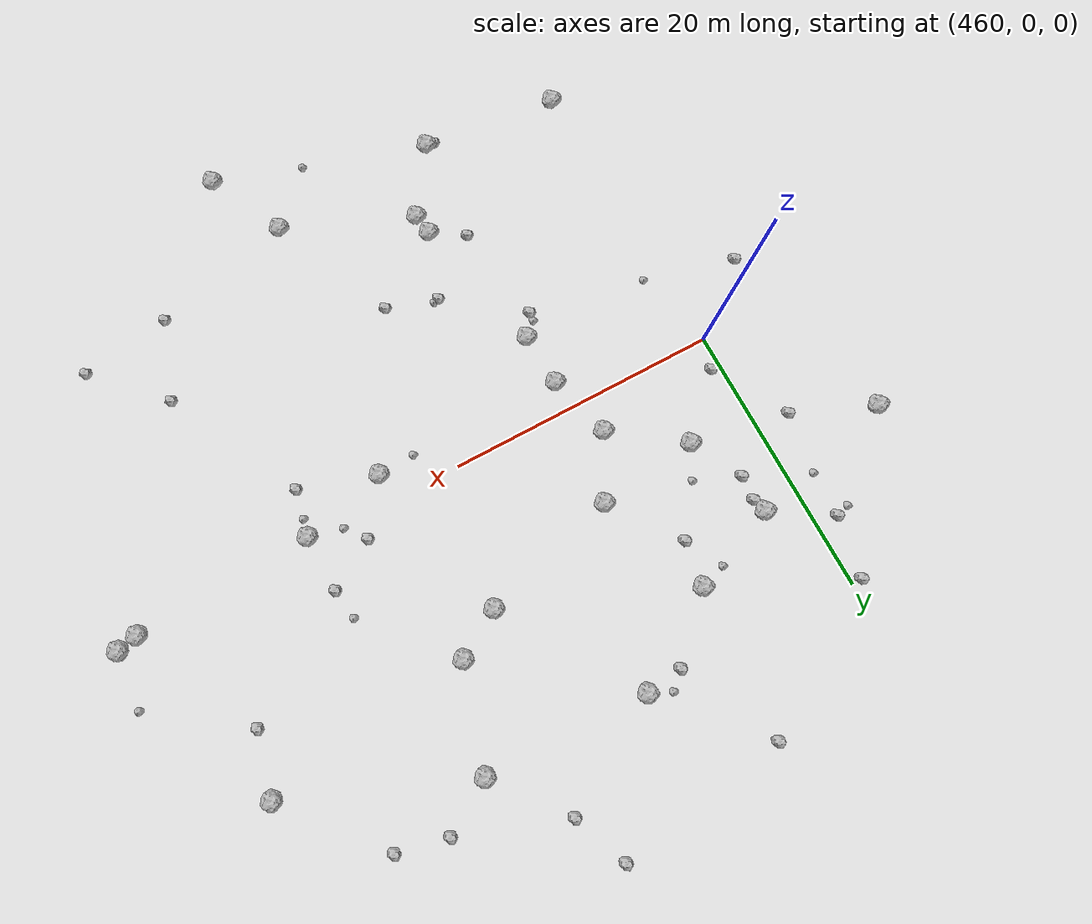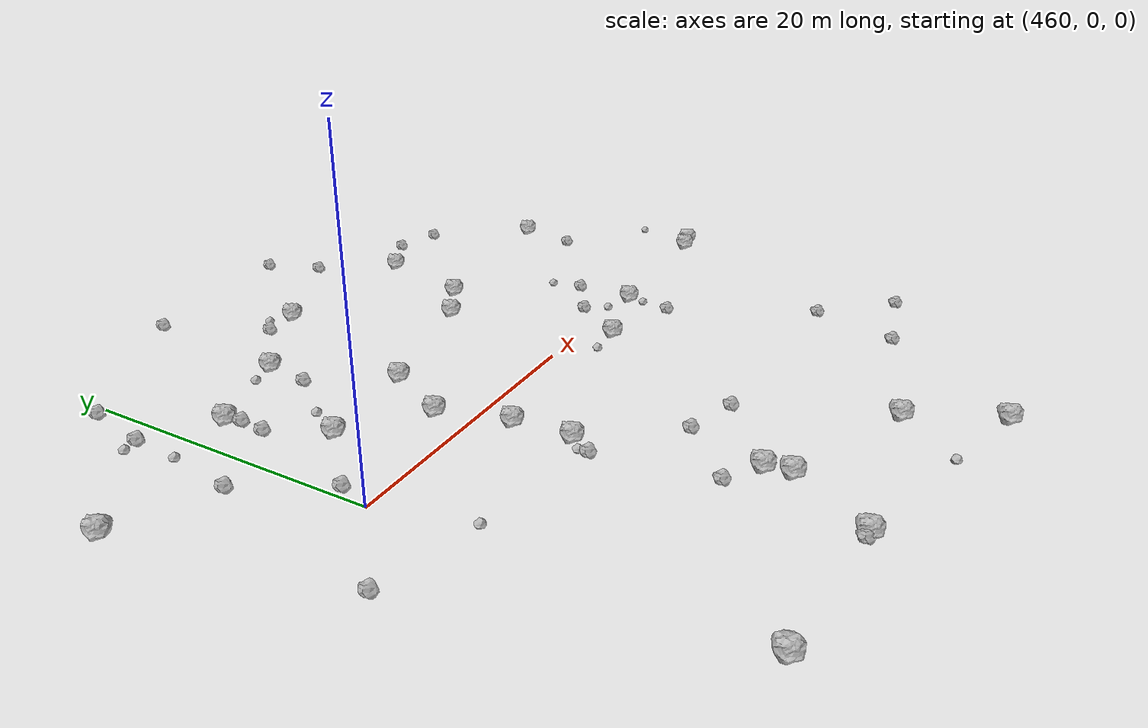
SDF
<sdf version="1.6">
 <world name="default">
  <include><uri>model://sun</uri></include>
  <model name="rock1_12_4">
   <include><uri>model://rock1</uri><pose>473.72888843085536 -16.599123128339663 0.5 0 0 0</pose></include>
  </model>
  <model name="rock1_12_5">
   <include><uri>model://rock1</uri><pose>491.47187580543186 -0.4477498644167248 0.5 0 0 0</pose></include>
  </model>
  <model name="rock1_12_6">
   <include><uri>model://rock1</uri><pose>472.28313891117955 7.058570296183277 0.5 0 0 0</pose></include>
  </model>
  <model name="rock1_12_7">
   <include><uri>model://rock1</uri><pose>464.8362183006344 6.16982522261906 0.5 0 0 0</pose></include>
  </model>
  <model name="rock1_12_8">
   <include><uri>model://rock1</uri><pose>482.467226770148 9.902799657911949 0.5 0 0 0</pose></include>
  </model>
  <model name="rock1_12_9">
   <include><uri>model://rock1</uri><pose>451.73342078647704 9.9999477483792 0.5 0 0 0</pose></include>
  </model>
  <model name="rock1_12_10">
   <include><uri>model://rock1</uri><pose>485.87738685359824 11.9154946756815 0.5 0 0 0</pose></include>
  </model>
  <model name="rock1_12_11">
   <include><uri>model://rock1</uri><pose>483.29270598242385 -22.0774469582483 0.5 0 0 0</pose></include>
  </model>
  <model name="rock1_12_12">
   <include><uri>model://rock1</uri><pose>473.9403450416626 -18.185990207767432 0.5 0 0 0</pose></include>
  </model>
  <model name="rock1_12_13">
   <include><uri>model://rock1</uri><pose>486.0519473096995 -27.78062407020797 0.5 0 0 0</pose></include>
  </model>
  <model name="rock1_12_14">
   <include><uri>model://rock1</uri><pose>471.0624706638685 -2.1907214914012556 0.5 0 0 0</pose></include>
  </model>
  <model name="rock1_12_15">
   <include><uri>model://rock1</uri><pose>504.54780852493724 0.18802071545243138 0.5 0 0 0</pose></include>
  </model>
  <model name="rock1_12_16">
   <include><uri>model://rock1</uri><pose>469.20611752496575 15.250348722259034 0.5 0 0 0</pose></include>
  </model>
  <model name="rock1_12_17">
   <include><uri>model://rock1</uri><pose>476.0857117711131 19.625965355424633 0.5 0 0 0</pose></include>
  </model>
  <model name="rock1_12_18">
   <include><uri>model://rock1</uri><pose>469.7902937927388 2.5304643327148497 0.5 0 0 0</pose></include>
  </model>
  <model name="rock1_12_19">
   <include><uri>model://rock1</uri><pose>462.76592886577447 12.755043183439192 0.5 0 0 0</pose></include>
  </model>
  <model name="rock1_12_20">
   <include><uri>model://rock1</uri><pose>460.5654164831047 -21.818344317996935 0.5 0 0 0</pose></include>
  </model>
  <model name="rock1_12_21">
   <include><uri>model://rock1</uri><pose>506.10173207239063 0.5403134887908152 0.5 0 0 0</pose></include>
  </model>
  <model name="rock1_12_22">
   <include><uri>model://rock1</uri><pose>470.63377355787276 -22.965762677697917 0.5 0 0 0</pose></include>
  </model>
  <model name="rock1_12_23">
   <include><uri>model://rock1</uri><pose>501.1177788849174 14.06404151687925 0.5 0 0 0</pose></include>
  </model>
  <model name="rock1_12_24">
   <include><uri>model://rock1</uri><pose>471.24309418582766 -6.101808300309326 0.5 0 0 0</pose></include>
  </model>
  <model name="rock1_12_25">
   <include><uri>model://rock1</uri><pose>485.148412692005 -2.0608838224148194 0.5 0 0 0</pose></include>
  </model>
  <model name="rock1_12_26">
   <include><uri>model://rock1</uri><pose>488.1600810420766 19.279119924611464 0.5 0 0 0</pose></include>
  </model>
  <model name="rock2_12_0">
   <include><uri>model://rock2</uri><pose>482.6266372260211 28.269230615635323 0.3 0 0 0</pose></include>
  </model>
  <model name="rock2_12_1">
   <include><uri>model://rock2</uri><pose>470.1308463669406 -7.655193088137128 0.3 0 0 0</pose></include>
  </model>
  <model name="rock2_12_2">
   <include><uri>model://rock2</uri><pose>458.4108461595086 15.40754388909442 0.3 0 0 0</pose></include>
  </model>
  <model name="rock2_12_3">
   <include><uri>model://rock2</uri><pose>500.0048259463126 9.514530224513805 0.3 0 0 0</pose></include>
  </model>
  <model name="rock2_12_4">
   <include><uri>model://rock2</uri><pose>490.73241559895575 -3.826748319767564 0.3 0 0 0</pose></include>
  </model>
  <model name="rock2_12_5">
   <include><uri>model://rock2</uri><pose>500.3222597345925 -18.46820380254727 0.3 0 0 0</pose></include>
  </model>
  <model name="rock2_12_6">
   <include><uri>model://rock2</uri><pose>493.68592303478914 -19.528402452428715 0.3 0 0 0</pose></include>
  </model>
  <model name="rock2_12_7">
   <include><uri>model://rock2</uri><pose>473.27925724145103 19.302241328861193 0.3 0 0 0</pose></include>
  </model>
  <model name="rock2_12_8">
   <include><uri>model://rock2</uri><pose>460.69562443734804 2.2035593050183095 0.3 0 0 0</pose></include>
  </model>
  <model name="rock2_12_9">
   <include><uri>model://rock2</uri><pose>479.2046490489926 -12.849521856050444 0.3 0 0 0</pose></include>
  </model>
  <model name="rock2_12_10">
   <include><uri>model://rock2</uri><pose>469.9688468410629 26.4184758269259 0.3 0 0 0</pose></include>
  </model>
  <model name="rock2_12_11">
   <include><uri>model://rock2</uri><pose>491.86215319794263 21.53674985543629 0.3 0 0 0</pose></include>
  </model>
  <model name="rock2_12_12">
   <include><uri>model://rock2</uri><pose>475.475361228035 -11.695676178206902 0.3 0 0 0</pose></include>
  </model>
  <model name="rock2_12_13">
   <include><uri>model://rock2</uri><pose>470.0325278378426 -22.9235546172908 0.3 0 0 0</pose></include>
  </model>
  <model name="rock2_12_14">
   <include><uri>model://rock2</uri><pose>454.86955886815633 -4.247049340213046 0.3 0 0 0</pose></include>
  </model>
  <model name="rock2_12_15">
   <include><uri>model://rock2</uri><pose>495.7740602045019 -13.75929916939478 0.3 0 0 0</pose></include>
  </model>
  <model name="rock2_12_16">
   <include><uri>model://rock2</uri><pose>491.4227264639251 3.7504207659885083 0.3 0 0 0</pose></include>
  </model>
  <model name="rock2_12_17">
   <include><uri>model://rock2</uri><pose>457.5402229219258 7.553489611343835 0.3 0 0 0</pose></include>
  </model>
  <model name="rock2_12_18">
   <include><uri>model://rock2</uri><pose>487.8656115949789 1.6206901104259792 0.3 0 0 0</pose></include>
  </model>
  <model name="rock2_12_19">
   <include><uri>model://rock2</uri><pose>506.05533117500636 0.8018446460561819 0.3 0 0 0</pose></include>
  </model>
  <model name="rock2_12_20">
   <include><uri>model://rock2</uri><pose>468.63302926447625 11.996822532306439 0.3 0 0 0</pose></include>
  </model>
  <model name="rock2_12_21">
   <include><uri>model://rock2</uri><pose>495.5562374433179 20.738209483420142 0.3 0 0 0</pose></include>
  </model>
  <model name="rock2_12_22">
   <include><uri>model://rock2</uri><pose>459.2977623966734 19.896015668936812 0.3 0 0 0</pose></include>
  </model>
  <model name="rock2_12_23">
   <include><uri>model://rock2</uri><pose>471.30249302386306 -15.09620677697805 0.3 0 0 0</pose></include>
  </model>
  <model name="rock2_12_24">
   <include><uri>model://rock2</uri><pose>462.8201579076429 9.922346493199598 0.3 0 0 0</pose></include>
  </model>
  <model name="rock2_12_25">
   <include><uri>model://rock2</uri><pose>462.9766804545777 11.750507029462597 0.3 0 0 0</pose></include>
  </model>
  <model name="rock2_12_26">
   <include><uri>model://rock2</uri><pose>484.1767288001192 24.291410842901072 0.3 0 0 0</pose></include>
  </model>
  <model name="rock3_12_0">
   <include><uri>model://rock3</uri><pose>479.60733621927153 -25.780504945110483 0.2 0 0 0</pose></include>
  </model>
  <model name="rock3_12_1">
   <include><uri>model://rock3</uri><pose>470.1621707702314 -7.01830663600785 0.2 0 0 0</pose></include>
  </model>
  <model name="rock3_12_2">
   <include><uri>model://rock3</uri><pose>474.4306212669652 20.37572380025189 0.2 0 0 0</pose></include>
  </model>
  <model name="rock3_12_3">
   <include><uri>model://rock3</uri><pose>457.3851261271328 15.13470666784557 0.2 0 0 0</pose></include>
  </model>
  <model name="rock3_12_4">
   <include><uri>model://rock3</uri><pose>491.1204039776718 5.979154811560875 0.2 0 0 0</pose></include>
  </model>
  <model name="rock3_12_5">
   <include><uri>model://rock3</uri><pose>466.0125981940321 8.567860330255236 0.2 0 0 0</pose></include>
  </model>
  <model name="rock3_12_6">
   <include><uri>model://rock3</uri><pose>467.1997394084877 14.685007964728513 0.2 0 0 0</pose></include>
  </model>
  <model name="rock3_12_7">
   <include><uri>model://rock3</uri><pose>506.45910338235024 4.785046189042994 0.2 0 0 0</pose></include>
  </model>
  <model name="rock3_12_8">
   <include><uri>model://rock3</uri><pose>488.99318949346303 0.14491326683037897 0.2 0 0 0</pose></include>
  </model>
  <model name="rock3_12_9">
   <include><uri>model://rock3</uri><pose>475.8425859830032 -11.62757408807763 0.2 0 0 0</pose></include>
  </model>
  <model name="rock3_12_10">
   <include><uri>model://rock3</uri><pose>491.1702428121876 -1.7457409698787814 0.2 0 0 0</pose></include>
  </model>
  <model name="rock3_12_11">
   <include><uri>model://rock3</uri><pose>482.3755807190342 -2.2392425489258763 0.2 0 0 0</pose></include>
  </model>
  <model name="rock3_12_12">
   <include><uri>model://rock3</uri><pose>458.2396212435387 12.05612703471624 0.2 0 0 0</pose></include>
  </model>
  <model name="rock3_12_13">
   <include><uri>model://rock3</uri><pose>461.556962795551 -5.982668385278803 0.2 0 0 0</pose></include>
  </model>
 </world>
</sdf>
